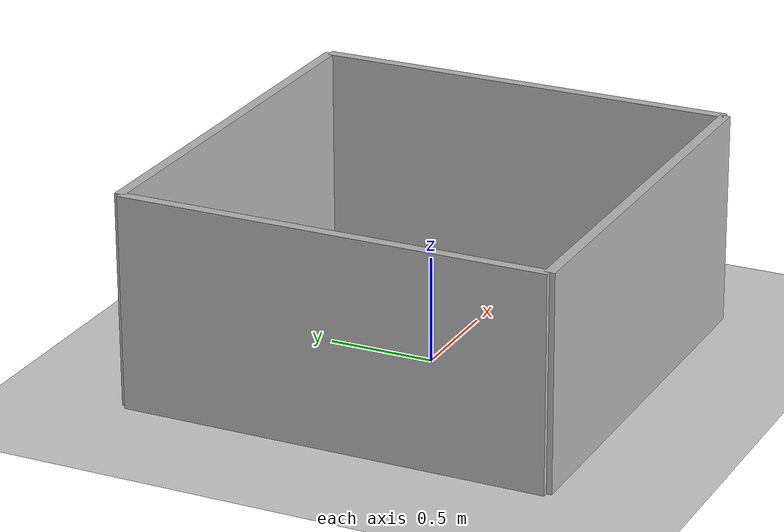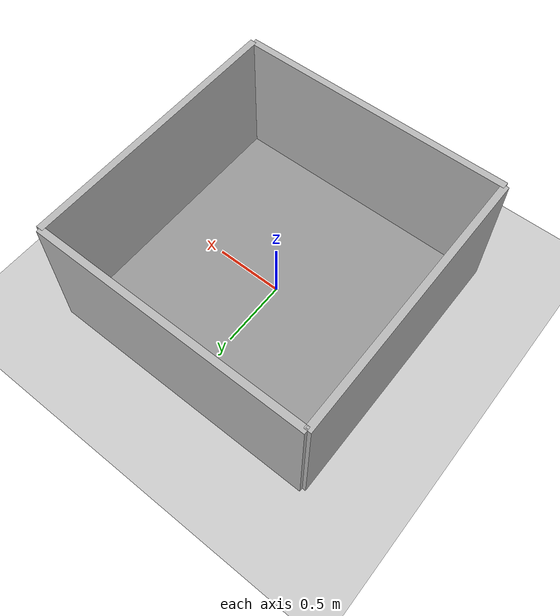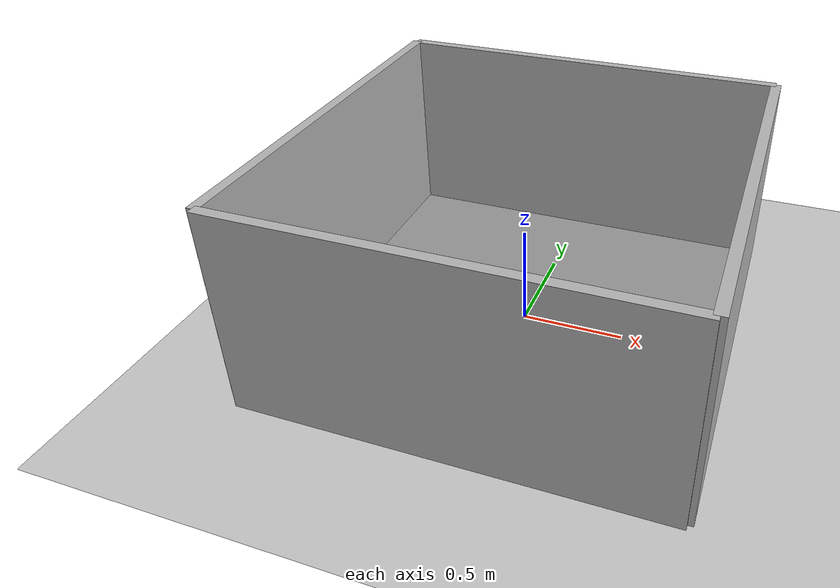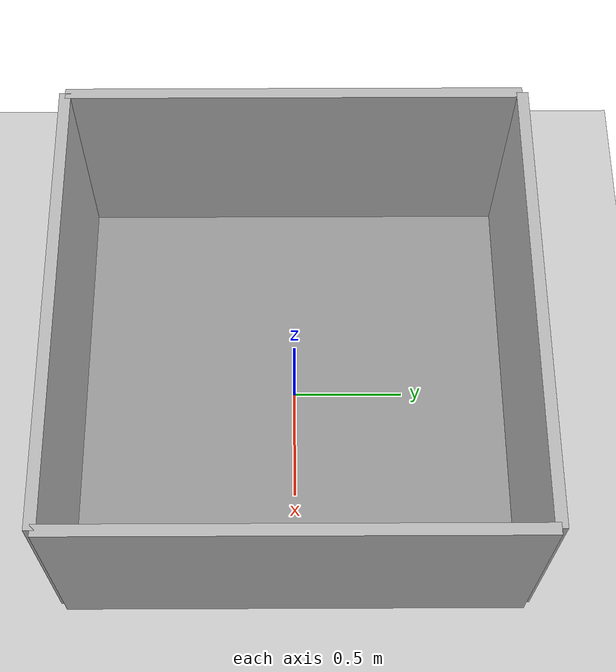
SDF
<?xml version="1.0" ?>
<sdf version="1.6">
  <world name="room_world">
    <include>
      <uri>model://ground_plane</uri>
    </include>

    <include>
      <uri>model://sun</uri>
    </include>

    <!-- Floor -->
    <model name="floor">
      <static>true</static>
      <link name="floor_link">
        <collision name="collision">
          <geometry>
            <box>
              <size>2 2 0.01</size>
            </box>
          </geometry>
        </collision>
        <visual name="visual">
          <geometry>
            <box>
              <size>2 2 0.01</size>
            </box>
          </geometry>
          <material>
            <script>
              <uri>file://media/materials/scripts/gazebo.material</uri>
              <name>Gazebo/Gray</name>
            </script>
          </material>
        </visual>
      </link>
    </model>

    <!-- Wall: Front -->
    <model name="wall_front">
      <static>true</static>
      <link name="link">
        <collision name="collision">
          <geometry>
            <box>
              <size>2 0.05 1</size>
            </box>
          </geometry>
        </collision>
        <visual name="visual">
          <geometry>
            <box>
              <size>2 0.05 1</size>
            </box>
          </geometry>
        </visual>
        <pose>0 1 0.5 0 0 0</pose>
      </link>
    </model>

    <!-- Wall: Back -->
    <model name="wall_back">
      <static>true</static>
      <link name="link">
        <collision name="collision">
          <geometry>
            <box>
              <size>2 0.05 1</size>
            </box>
          </geometry>
        </collision>
        <visual name="visual">
          <geometry>
            <box>
              <size>2 0.05 1</size>
            </box>
          </geometry>
        </visual>
        <pose>0 -1 0.5 0 0 0</pose>
      </link>
    </model>

    <!-- Wall: Left -->
    <model name="wall_left">
      <static>true</static>
      <link name="link">
        <collision name="collision">
          <geometry>
            <box>
              <size>0.05 2 1</size>
            </box>
          </geometry>
        </collision>
        <visual name="visual">
          <geometry>
            <box>
              <size>0.05 2 1</size>
            </box>
          </geometry>
        </visual>
        <pose>-1 0 0.5 0 0 0</pose>
      </link>
    </model>

    <!-- Wall: Right -->
    <model name="wall_right">
      <static>true</static>
      <link name="link">
        <collision name="collision">
          <geometry>
            <box>
              <size>0.05 2 1</size>
            </box>
          </geometry>
        </collision>
        <visual name="visual">
          <geometry>
            <box>
              <size>0.05 2 1</size>
            </box>
          </geometry>
        </visual>
        <pose>1 0 0.5 0 0 0</pose>
      </link>
    </model>

  </world>
</sdf>
